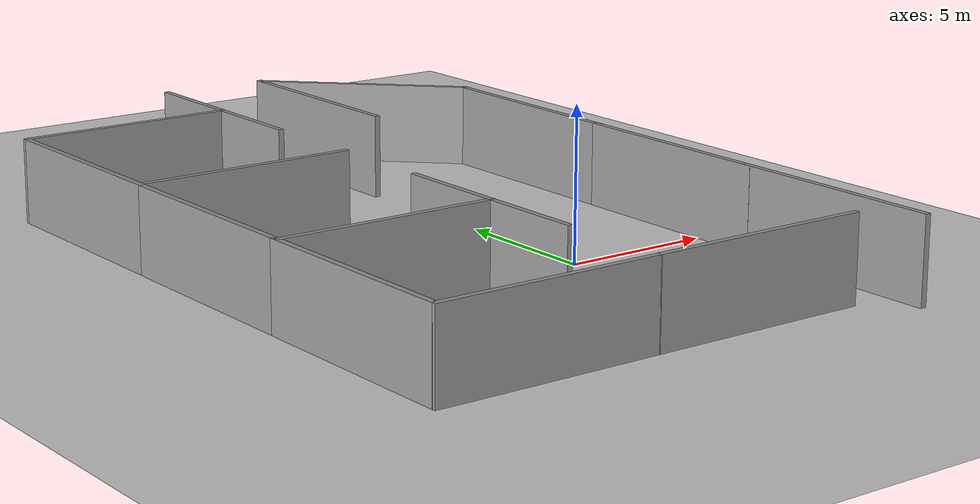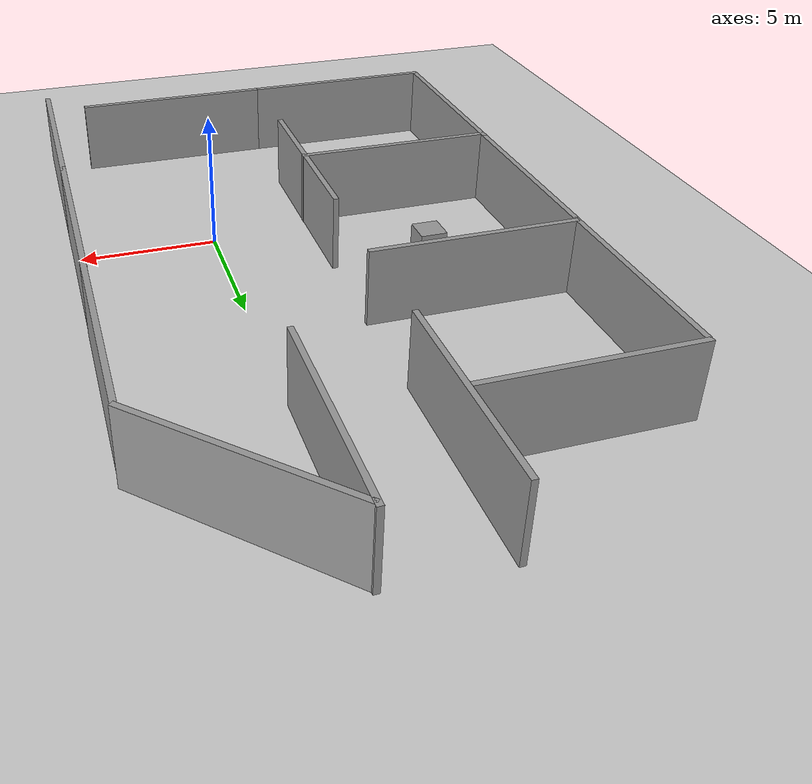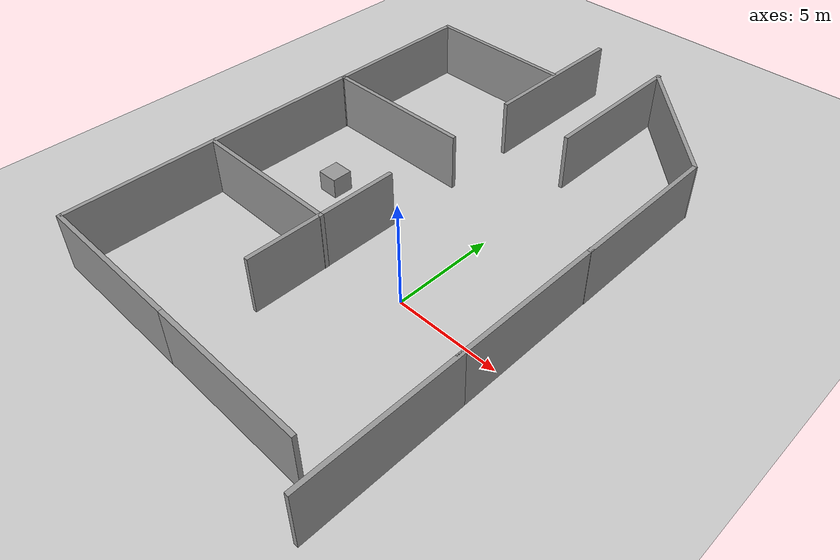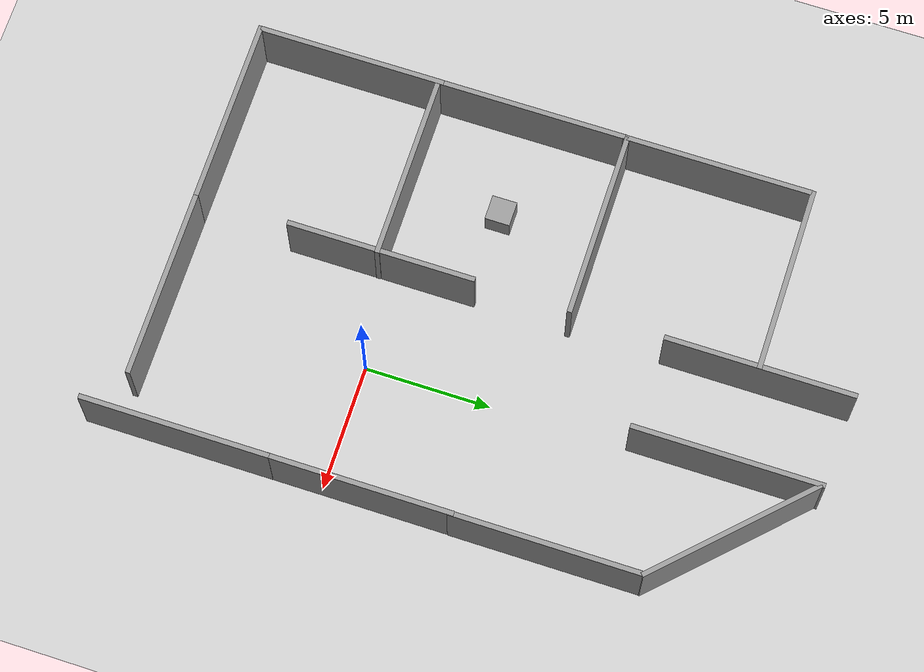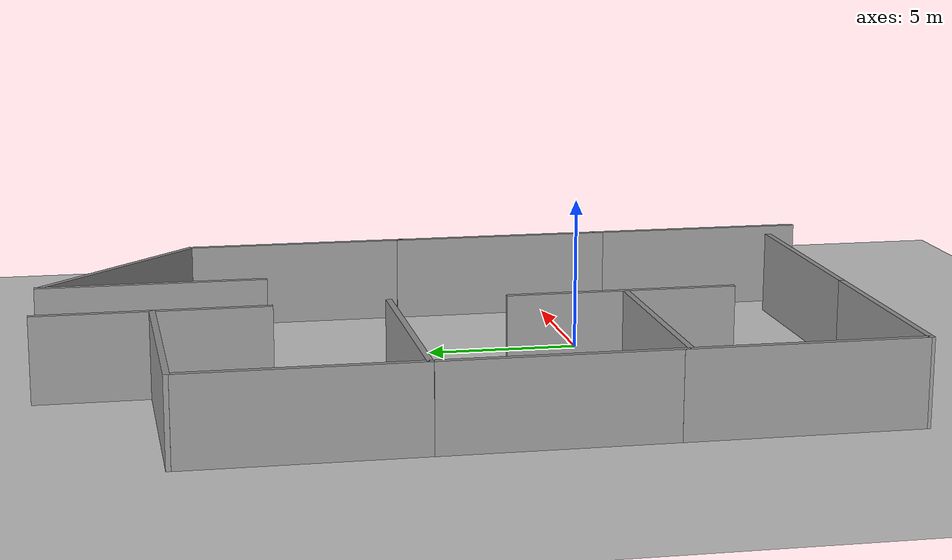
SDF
<sdf version="1.7">
 <world name="default">
  <light name="sun" type="directional">
   <pose>0 0 10 0 -0 0</pose>
   <diffuse>0.8 0.8 0.8 1</diffuse>
   <specular>0.2 0.2 0.2 1</specular>
   <attenuation>
    <range>1000</range>
    <constant>0.9</constant>
    <linear>0.01</linear>
    <quadratic>0.001</quadratic>
   </attenuation>
   <direction>-0.5 0.1 -0.9</direction>
   <spot><inner_angle>0</inner_angle><outer_angle>0</outer_angle><falloff>0</falloff></spot>
  </light>
  <model name="ground_plane">
   <static>1</static>
   <link name="link">
    <collision name="collision">
     <geometry><plane><normal>0 0 1</normal><size>100 100</size></plane></geometry>
     <surface>
      <contact><collide_bitmask>65535</collide_bitmask></contact>
      <friction><ode><mu>100</mu><mu2>50</mu2></ode></friction>
     </surface>
    </collision>
    <visual name="visual">
     <cast_shadows>0</cast_shadows>
     <geometry><plane><normal>0 0 1</normal><size>100 100</size></plane></geometry>
     <material>
      <script><uri>file://media/materials/scripts/gazebo.material</uri><name>Gazebo/Grey</name></script>
     </material>
    </visual>
   </link>
  </model>
  <gravity>0 0 -9.8</gravity>
  <magnetic_field>6e-06 2.3e-05 -4.2e-05</magnetic_field>
  <atmosphere type="adiabatic"/>
  <physics type="ode">
   <max_step_size>0.001</max_step_size>
   <real_time_factor>1</real_time_factor>
   <real_time_update_rate>1000</real_time_update_rate>
  </physics>
  <scene><ambient>0.4 0.4 0.4 1</ambient><background>0.7 0.7 0.7 1</background><shadows>1</shadows></scene>
  <spherical_coordinates>
   <surface_model>EARTH_WGS84</surface_model>
   <latitude_deg>0</latitude_deg>
   <longitude_deg>0</longitude_deg>
   <elevation>0</elevation>
   <heading_deg>0</heading_deg>
  </spherical_coordinates>
  <model name="grey_wall">
   <static>1</static>
   <link name="link">
    <pose>0 0 1.4 0 -0 0</pose>
    <collision name="collision"><geometry><box><size>7.5 0.2 2.8</size></box></geometry></collision>
    <visual name="visual">
     <cast_shadows>0</cast_shadows>
     <geometry><box><size>7.5 0.2 2.8</size></box></geometry>
     <material>
      <script>
       <uri>model://grey_wall/materials/scripts</uri>
       <uri>model://grey_wall/materials/textures</uri>
       <name>vrc/grey_wall</name>
      </script>
     </material>
    </visual>
   </link>
   <pose>0 -8 0 0 -0 0</pose>
  </model>
  <model name="grey_wall_clone">
   <static>1</static>
   <link name="link">
    <pose>0 0 1.4 0 -0 0</pose>
    <collision name="collision"><geometry><box><size>7.5 0.2 2.8</size></box></geometry></collision>
    <visual name="visual">
     <cast_shadows>0</cast_shadows>
     <geometry><box><size>7.5 0.2 2.8</size></box></geometry>
     <material>
      <script>
       <uri>model://grey_wall/materials/scripts</uri>
       <uri>model://grey_wall/materials/textures</uri>
       <name>vrc/grey_wall</name>
      </script>
     </material>
    </visual>
   </link>
   <pose>-7.4625 -8 0 0 -0 0</pose>
  </model>
  <model name="grey_wall_clone_0">
   <static>1</static>
   <link name="link">
    <pose>0 0 1.4 0 -0 0</pose>
    <collision name="collision"><geometry><box><size>7.5 0.2 2.8</size></box></geometry></collision>
    <visual name="visual">
     <cast_shadows>0</cast_shadows>
     <geometry><box><size>7.5 0.2 2.8</size></box></geometry>
     <material>
      <script>
       <uri>model://grey_wall/materials/scripts</uri>
       <uri>model://grey_wall/materials/textures</uri>
       <name>vrc/grey_wall</name>
      </script>
     </material>
    </visual>
   </link>
   <pose>-11.1205 -4.23778 0 0 0 -1.5708</pose>
  </model>
  <model name="grey_wall_clone_clone">
   <static>1</static>
   <link name="link">
    <pose>0 0 1.4 0 -0 0</pose>
    <collision name="collision"><geometry><box><size>7.5 0.2 2.8</size></box></geometry></collision>
    <visual name="visual">
     <cast_shadows>0</cast_shadows>
     <geometry><box><size>7.5 0.2 2.8</size></box></geometry>
     <material>
      <script>
       <uri>model://grey_wall/materials/scripts</uri>
       <uri>model://grey_wall/materials/textures</uri>
       <name>vrc/grey_wall</name>
      </script>
     </material>
    </visual>
   </link>
   <pose>-7.41459 -0.709838 0 0 -0 0</pose>
  </model>
  <model name="grey_wall_clone_0_clone">
   <static>1</static>
   <link name="link">
    <pose>0 0 1.4 0 -0 0</pose>
    <collision name="collision"><geometry><box><size>7.5 0.2 2.8</size></box></geometry></collision>
    <visual name="visual">
     <cast_shadows>0</cast_shadows>
     <geometry><box><size>7.5 0.2 2.8</size></box></geometry>
     <material>
      <script>
       <uri>model://grey_wall/materials/scripts</uri>
       <uri>model://grey_wall/materials/textures</uri>
       <name>vrc/grey_wall</name>
      </script>
     </material>
    </visual>
   </link>
   <pose>-11.1165 3.07489 0 0 0 -1.5708</pose>
  </model>
  <model name="grey_wall_clone_0_clone_0">
   <static>1</static>
   <link name="link">
    <pose>0 0 1.4 0 -0 0</pose>
    <collision name="collision"><geometry><box><size>7.5 0.2 2.8</size></box></geometry></collision>
    <visual name="visual">
     <cast_shadows>0</cast_shadows>
     <geometry><box><size>7.5 0.2 2.8</size></box></geometry>
     <material>
      <script>
       <uri>model://grey_wall/materials/scripts</uri>
       <uri>model://grey_wall/materials/textures</uri>
       <name>vrc/grey_wall</name>
      </script>
     </material>
    </visual>
   </link>
   <pose>-11.1091 10.5132 0 0 0 -1.5708</pose>
  </model>
  <model name="grey_wall_clone_clone_clone">
   <static>1</static>
   <link name="link">
    <pose>0 0 1.4 0 -0 0</pose>
    <collision name="collision"><geometry><box><size>7.5 0.2 2.8</size></box></geometry></collision>
    <visual name="visual">
     <cast_shadows>0</cast_shadows>
     <geometry><box><size>7.5 0.2 2.8</size></box></geometry>
     <material>
      <script>
       <uri>model://grey_wall/materials/scripts</uri>
       <uri>model://grey_wall/materials/textures</uri>
       <name>vrc/grey_wall</name>
      </script>
     </material>
    </visual>
   </link>
   <pose>-7.38877 6.92404 0 0 -0 0</pose>
  </model>
  <model name="grey_wall_clone_clone_clone_0">
   <static>1</static>
   <link name="link">
    <pose>0 0 1.4 0 -0 0</pose>
    <collision name="collision"><geometry><box><size>7.5 0.2 2.8</size></box></geometry></collision>
    <visual name="visual">
     <cast_shadows>0</cast_shadows>
     <geometry><box><size>7.5 0.2 2.8</size></box></geometry>
     <material>
      <script>
       <uri>model://grey_wall/materials/scripts</uri>
       <uri>model://grey_wall/materials/textures</uri>
       <name>vrc/grey_wall</name>
      </script>
     </material>
    </visual>
   </link>
   <pose>-7.44571 14.317 0 0 -0 0</pose>
  </model>
  <model name="grey_wall_clone_0_clone_clone">
   <static>1</static>
   <link name="link">
    <pose>0 0 1.4 0 -0 0</pose>
    <collision name="collision"><geometry><box><size>7.5 0.2 2.8</size></box></geometry></collision>
    <visual name="visual">
     <cast_shadows>0</cast_shadows>
     <geometry><box><size>7.5 0.2 2.8</size></box></geometry>
     <material>
      <script>
       <uri>model://grey_wall/materials/scripts</uri>
       <uri>model://grey_wall/materials/textures</uri>
       <name>vrc/grey_wall</name>
      </script>
     </material>
    </visual>
   </link>
   <pose>-3.7894 14.3406 0 0 0 -1.5708</pose>
  </model>
  <model name="grey_wall_clone_0_clone_clone_0">
   <static>1</static>
   <link name="link">
    <pose>0 0 1.4 0 -0 0</pose>
    <collision name="collision"><geometry><box><size>7.5 0.2 2.8</size></box></geometry></collision>
    <visual name="visual">
     <cast_shadows>0</cast_shadows>
     <geometry><box><size>7.5 0.2 2.8</size></box></geometry>
     <material>
      <script>
       <uri>model://grey_wall/materials/scripts</uri>
       <uri>model://grey_wall/materials/textures</uri>
       <name>vrc/grey_wall</name>
      </script>
     </material>
    </visual>
   </link>
   <pose>-3.78016 -0.585192 0 0 0 -1.5708</pose>
  </model>
  <model name="grey_wall_clone_0_clone_clone_1">
   <static>1</static>
   <link name="link">
    <pose>0 0 1.4 0 -0 0</pose>
    <collision name="collision"><geometry><box><size>7.5 0.2 2.8</size></box></geometry></collision>
    <visual name="visual">
     <cast_shadows>0</cast_shadows>
     <geometry><box><size>7.5 0.2 2.8</size></box></geometry>
     <material>
      <script>
       <uri>model://grey_wall/materials/scripts</uri>
       <uri>model://grey_wall/materials/textures</uri>
       <name>vrc/grey_wall</name>
      </script>
     </material>
    </visual>
   </link>
   <pose>-0.083355 14.1432 0 0 0 -1.5708</pose>
  </model>
  <model name="grey_wall_clone_0_clone_clone_2">
   <static>1</static>
   <link name="link">
    <pose>0 0 1.4 0 -0 0</pose>
    <collision name="collision"><geometry><box><size>7.5 0.2 2.8</size></box></geometry></collision>
    <visual name="visual">
     <cast_shadows>0</cast_shadows>
     <geometry><box><size>7.5 0.2 2.8</size></box></geometry>
     <material>
      <script>
       <uri>model://grey_wall/materials/scripts</uri>
       <uri>model://grey_wall/materials/textures</uri>
       <name>vrc/grey_wall</name>
      </script>
     </material>
    </visual>
   </link>
   <pose>2.57544 15.102 0 0 0 -0.785402</pose>
  </model>
  <model name="grey_wall_clone_0_clone_clone_0_clone">
   <static>1</static>
   <link name="link">
    <pose>0 0 1.4 0 -0 0</pose>
    <collision name="collision"><geometry><box><size>7.5 0.2 2.8</size></box></geometry></collision>
    <visual name="visual">
     <cast_shadows>0</cast_shadows>
     <geometry><box><size>7.5 0.2 2.8</size></box></geometry>
     <material>
      <script>
       <uri>model://grey_wall/materials/scripts</uri>
       <uri>model://grey_wall/materials/textures</uri>
       <name>vrc/grey_wall</name>
      </script>
     </material>
    </visual>
   </link>
   <pose>5.16721 8.76017 0 0 0 -1.5708</pose>
  </model>
  <model name="grey_wall_clone_0_clone_clone_0_clone_0">
   <static>1</static>
   <link name="link">
    <pose>0 0 1.4 0 -0 0</pose>
    <collision name="collision"><geometry><box><size>7.5 0.2 2.8</size></box></geometry></collision>
    <visual name="visual">
     <cast_shadows>0</cast_shadows>
     <geometry><box><size>7.5 0.2 2.8</size></box></geometry>
     <material>
      <script>
       <uri>model://grey_wall/materials/scripts</uri>
       <uri>model://grey_wall/materials/textures</uri>
       <name>vrc/grey_wall</name>
      </script>
     </material>
    </visual>
   </link>
   <pose>5.1529 1.50139 0 0 0 -1.5708</pose>
  </model>
  <model name="grey_wall_clone_0_clone_clone_0_clone_1">
   <static>1</static>
   <link name="link">
    <pose>0 0 1.4 0 -0 0</pose>
    <collision name="collision"><geometry><box><size>7.5 0.2 2.8</size></box></geometry></collision>
    <visual name="visual">
     <cast_shadows>0</cast_shadows>
     <geometry><box><size>7.5 0.2 2.8</size></box></geometry>
     <material>
      <script>
       <uri>model://grey_wall/materials/scripts</uri>
       <uri>model://grey_wall/materials/textures</uri>
       <name>vrc/grey_wall</name>
      </script>
     </material>
    </visual>
   </link>
   <pose>5.15548 -5.66427 0 0 0 -1.5708</pose>
  </model>
  <model name="unit_box">
   <pose>-7.43927 3.0329 0.499995 -1e-05 -0 -0</pose>
   <link name="link">
    <inertial>
     <mass>1</mass>
     <inertia>
      <ixx>0.166667</ixx>
      <ixy>0</ixy>
      <ixz>0</ixz>
      <iyy>0.166667</iyy>
      <iyz>0</iyz>
      <izz>0.166667</izz>
     </inertia>
    </inertial>
    <collision name="collision"><geometry><box><size>1 1 1</size></box></geometry></collision>
    <visual name="visual">
     <geometry><box><size>1 1 1</size></box></geometry>
     <material>
      <script><name>Gazebo/Grey</name><uri>file://media/materials/scripts/gazebo.material</uri></script>
     </material>
    </visual>
   </link>
  </model>
 </world>
</sdf>
